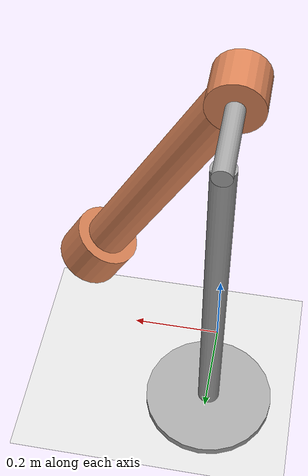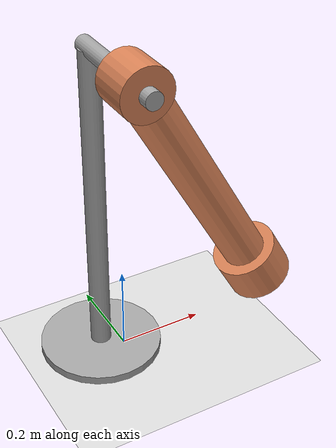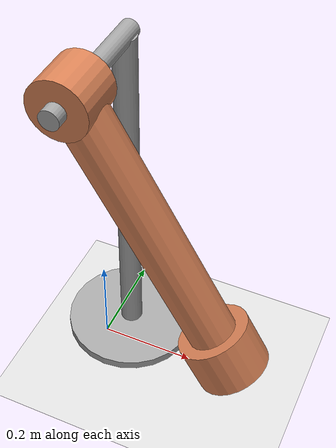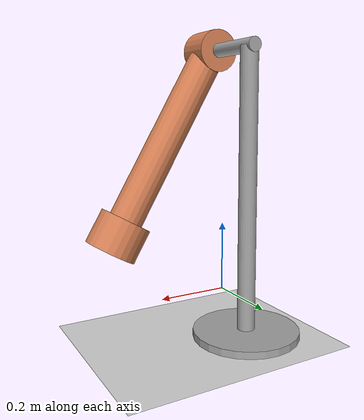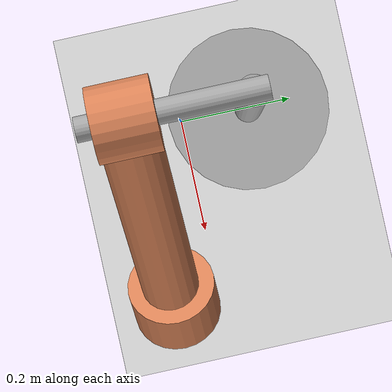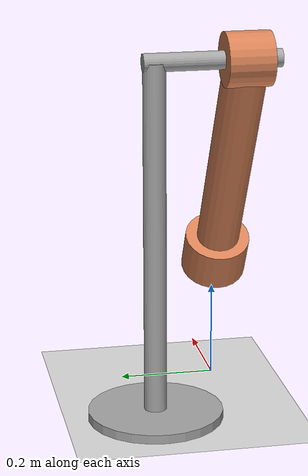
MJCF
<mujoco model="pendulum">
    <include file="scene.xml"/>
	<compiler inertiafromgeom="true"/>
	<default>
		<joint armature="0" damping="0.4" limited="true"/>
		<geom contype="0" friction="1 0.1 0.1" material="geom"/>
		<motor ctrlrange="-1 1"/>
	</default>
	<statistic center="0 0 0.35"/>

	<visual>
		<global elevation = "-25" azimuth= "125" fovy="40" offwidth = "1500" offheight = "1000"/>
	</visual>

	<option gravity="0 0 -9.81" integrator="RK4" timestep="0.02"/>
	<size nstack="3000"/>
	<worldbody>
	    <geom condim="3" material="groundplane" name="floor" pos="0 0 -0.1" size="1 1 0.1" type="plane"/>
	    <!--  ================= PENDULUM ================= /-->
		<body name="pin" pos="0 0 0.7" quat="1 1 0 0">
		<geom name="pin" size="0.020 0.15" type="cylinder" material="fixed-geom-mat"/>
        	<body name="pole" pos="0 0 0.075" euler="90 30 90">
				<joint axis="1 0 0" name="hinge" pos="0 0 0" ref="30" stiffness="0" limited="false" range="-180 180" type="hinge"/>
				<geom fromto="0 0 0 0.001 0 0.6" name="cpole" size="0.049 0.2" type="capsule"/>
				<geom name="top" size="0.06 0.05" quat="0 1 0 1" type="cylinder"/>
				<body name="tip" pos="0.0 0 0.6" quat="1 0 0 0">
					<geom name="tip" size="0.075 0.05" type="cylinder"/>
				</body>
			</body>
			<body name="arm" pos="0 -0.4 -0.125" quat="1 1 0 0">
				<geom name="arm" size="0.025 0.4" type="cylinder" material="fixed-geom-mat"/>
				<body name="base" pos="0 0.0 0.39" quat="1 0 0 0">
					<geom name="base" size="0.15 0.010" type="cylinder" material="fixed-geom-mat"/>
				</body>
			</body>
		</body>
	</worldbody>
	<actuator>
		<motor ctrllimited="true" ctrlrange="-1 1" gear="12" joint="hinge" name="main"/>
	</actuator>
</mujoco>

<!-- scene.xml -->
<mujoco model="robot scene">

  <statistic center="0 0 0.8" extent="2"/>

  <visual>
    <headlight diffuse="0.3 0.3 0.3" ambient="0.6 0.6 0.6" specular="0.2 0.2 0.2"/>
    <rgba haze="0.15 0.25 0.35 1"/>
    <global azimuth="120" elevation="-20"/>
  </visual>

  <asset>
    <!-- Solid gray skybox -->
    <texture type="skybox" builtin="flat" rgb1="0.5 0.5 0.5" width="1" height="1"/>

    <!-- Ground texture remains the same -->
    <texture type="2d" name="groundplane" builtin="checker" mark="cross" rgb1="0.84 0.84 0.84" rgb2="0.89 0.89 0.89"
      markrgb="0.4 0.4 0.4" width="300" height="300"/>
    <material name="groundplane" texture="groundplane" texuniform="true" texrepeat="5 5" reflectance="0.05" shininess="0.5" />

    <!-- Geom materials -->
    <texture builtin="flat" height="128" mark="cross" markrgb="1 1 1" name="texgeom" random="0.01" rgb1="0.85490197 0.5137255  0.34" rgb2="0.87 0.66 0.47" type="cube" width="128"/>
    <material name="geom" texture="texgeom" texuniform="true"/>

    <texture builtin="flat" height="128" mark="cross" markrgb="1 1 1" name="fixed-geom-text" random="0.01" rgb1="0.65 0.65 0.65" rgb2="0.4 0.4 0.4" type="cube" width="128"/>
    <material name="fixed-geom-mat" texture="fixed-geom-text" texuniform="true"/>

  </asset>

  <worldbody>
    <light pos="1 -1 1.5" dir="-1 1 -1" diffuse="0.4 0.4 0.4" directional="true"/>
  </worldbody>
</mujoco>
